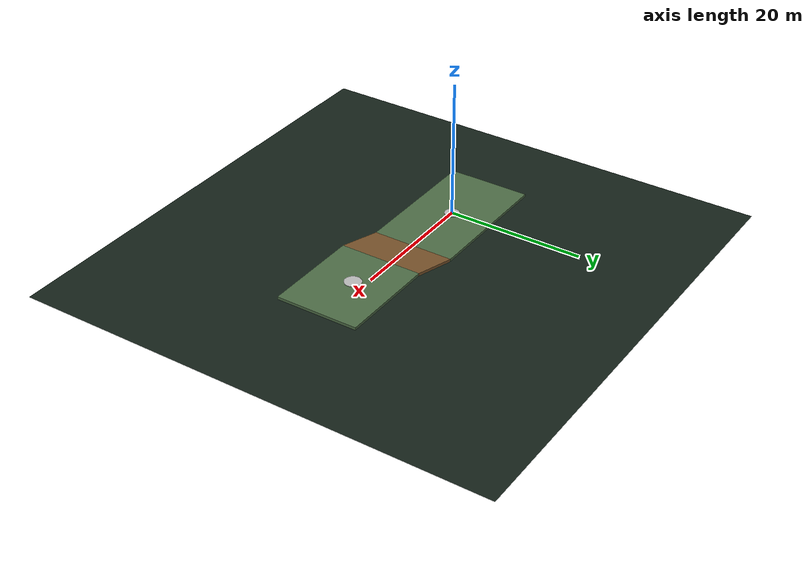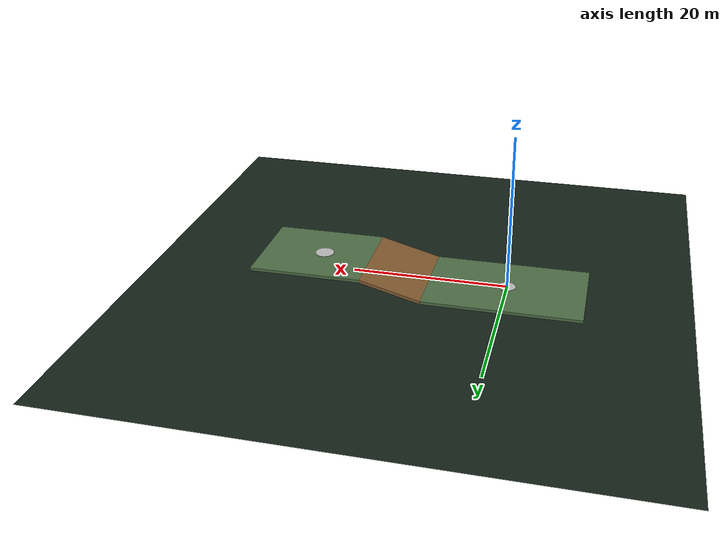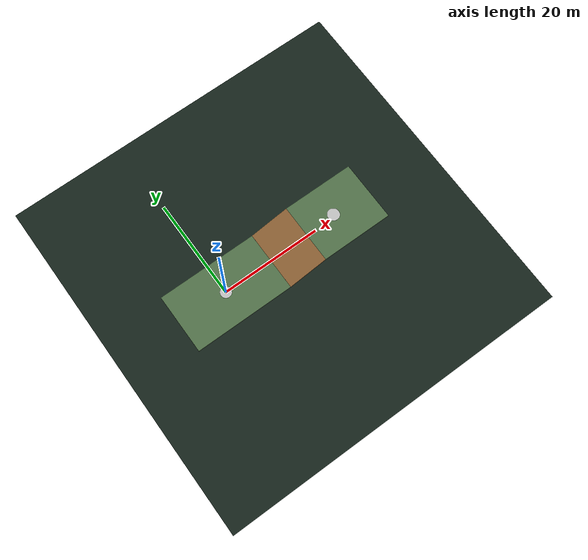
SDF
<?xml version="1.0"?>
<sdf version="1.9">
  <world name="track_deployment_demo">
    <physics name="1ms" type="dart">
      <max_step_size>0.001</max_step_size><real_time_factor>1.0</real_time_factor>
      <dart><collision_detector>bullet</collision_detector></dart>
    </physics>
    <gravity>0 0 -9.81</gravity>
    <spherical_coordinates>
      <surface_model>EARTH_WGS84</surface_model>
      <latitude_deg>1.4466</latitude_deg><longitude_deg>103.7300</longitude_deg>
      <elevation>0</elevation><heading_deg>0</heading_deg>
    </spherical_coordinates>
    <plugin filename="gz-sim-physics-system" name="gz::sim::systems::Physics"/>
    <plugin filename="gz-sim-user-commands-system" name="gz::sim::systems::UserCommands"/>
    <plugin filename="gz-sim-scene-broadcaster-system" name="gz::sim::systems::SceneBroadcaster"/>
    <plugin filename="gz-sim-imu-system" name="gz::sim::systems::Imu"/>
    <plugin filename="gz-sim-navsat-system" name="gz::sim::systems::NavSat"/>
    <plugin filename="gz-sim-sensors-system" name="gz::sim::systems::Sensors">
      <render_engine>ogre2</render_engine>
    </plugin>
    <!-- No mud or water zones: terrain truth is FIRM everywhere. -->
    <plugin filename="tidal_vehicle_plugins" name="hover::TerrainZones">
      <ground_height>0.0</ground_height>
    </plugin>

    <scene><ambient>0.45 0.48 0.50 1</ambient><background>0.12 0.18 0.24 1</background><grid>true</grid></scene>
    <light type="directional" name="sun">
      <pose>0 0 12 0 0 0</pose><diffuse>0.95 0.93 0.85 1</diffuse>
      <specular>0.15 0.15 0.15 1</specular><direction>-0.4 0.3 -0.9</direction>
    </light>

    <!-- Flat launch surface: x = -10 to 10, z = 0. -->
    <model name="lower_platform"><static>true</static><pose>0 0 -0.20 0 0 0</pose>
      <link name="link"><collision name="collision"><geometry><box><size>20 12 0.40</size></box></geometry><surface><friction><ode><mu>1.2</mu><mu2>1.2</mu2></ode></friction></surface></collision>
        <visual name="visual"><geometry><box><size>20 12 0.40</size></box></geometry><material><ambient>0.30 0.42 0.27 1</ambient><diffuse>0.30 0.42 0.27 1</diffuse></material></visual></link>
    </model>
    <!-- 8 m long along its surface, rising 2.07 m over 7.73 m horizontally. -->
    <model name="firm_bank_15deg"><static>true</static><pose>13.916 0 0.842 0 -0.26180 0</pose>
      <link name="link"><collision name="collision"><geometry><box><size>8 12 0.40</size></box></geometry><surface><friction><ode><mu>1.3</mu><mu2>1.3</mu2></ode></friction></surface></collision>
        <visual name="visual"><geometry><box><size>8 12 0.40</size></box></geometry><material><ambient>0.52 0.36 0.19 1</ambient><diffuse>0.52 0.36 0.19 1</diffuse></material></visual></link>
    </model>
    <model name="upper_platform"><static>true</static><pose>24.864 0 1.870 0 0 0</pose>
      <link name="link"><collision name="collision"><geometry><box><size>14.272 12 0.40</size></box></geometry><surface><friction><ode><mu>1.2</mu><mu2>1.2</mu2></ode></friction></surface></collision>
        <visual name="visual"><geometry><box><size>14.272 12 0.40</size></box></geometry><material><ambient>0.30 0.42 0.27 1</ambient><diffuse>0.30 0.42 0.27 1</diffuse></material></visual></link>
    </model>
    <model name="start_marker"><static>true</static><pose>0 0 0.03 0 0 0</pose><link name="link"><visual name="visual"><geometry><cylinder><radius>1.1</radius><length>0.06</length></cylinder></geometry><material><emissive>0.05 0.80 0.25 1</emissive></material></visual></link></model>
    <model name="top_marker"><static>true</static><pose>24 0 2.10 0 0 0</pose><link name="link"><visual name="visual"><geometry><cylinder><radius>1.2</radius><length>0.06</length></cylinder></geometry><material><emissive>0.95 0.65 0.05 1</emissive></material></visual></link></model>
    <model name="backdrop"><static>true</static><pose>12 0 -0.46 0 0 0</pose><link name="link"><visual name="visual"><geometry><box><size>70 70 0.02</size></box></geometry><material><ambient>0.08 0.13 0.10 1</ambient><diffuse>0.08 0.13 0.10 1</diffuse></material></visual></link></model>
  </world>
</sdf>
